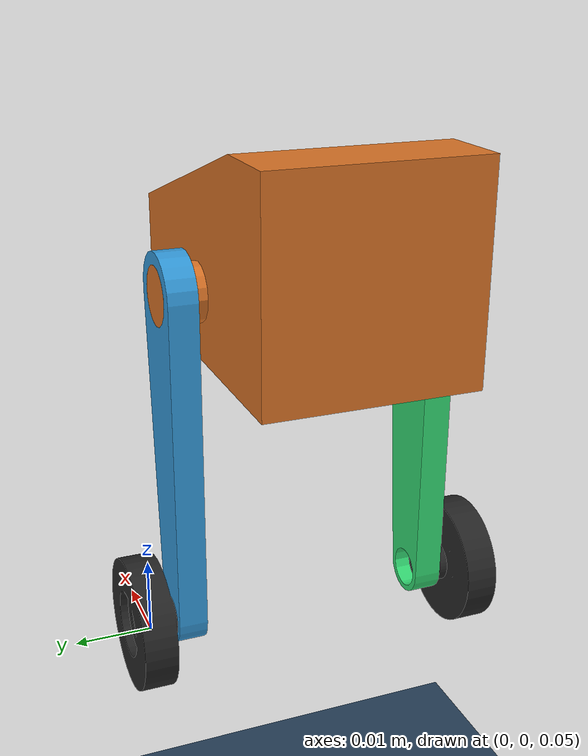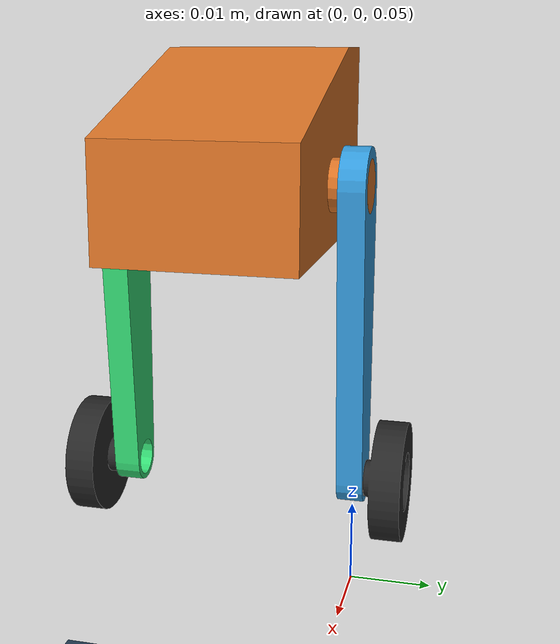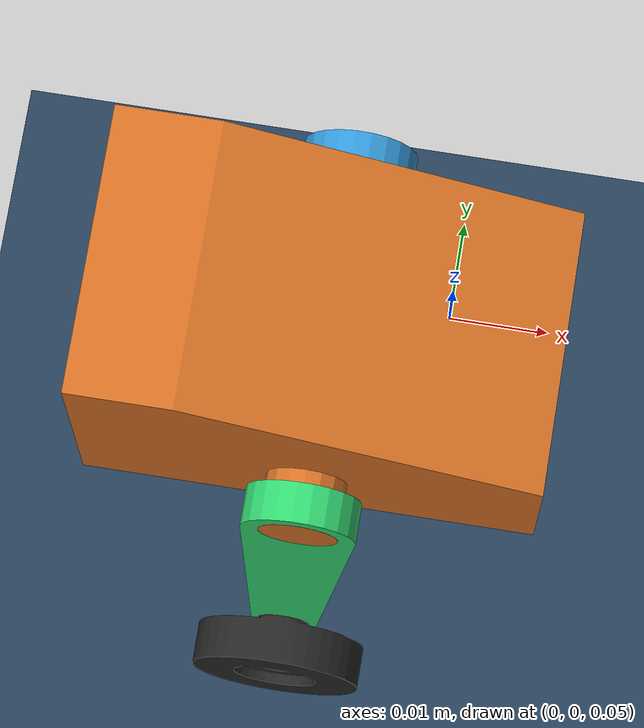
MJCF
<mujoco model="wheel_leg">
  <compiler angle="radian" meshdir="car_urdf/meshes" autolimits="true"/>
  <option gravity="0 0 -9.81" timestep="0.001" integrator="Euler"/>

  <visual>
    <headlight ambient="0.4 0.4 0.4" diffuse="0.8 0.8 0.8" specular="0.1 0.1 0.1"/>
  </visual>

  <default>
    <geom friction="1.2 0.005 0.0001" condim="3" solref="0.002 1" solimp="0.99 0.999 0.0001 0.5 2"/>
  </default>

  <asset>
    <mesh name="base_link" file="base_link.STL"/>
    <mesh name="left_leg" file="left_leg.STL"/>
    <mesh name="left_wheel" file="left_wheel.STL"/>
    <mesh name="right_leg" file="right_leg.STL"/>
    <mesh name="right_wheel" file="right_wheel.STL"/>
    <texture name="grid" type="2d" builtin="checker" width="512" height="512" rgb1=".1 .2 .3" rgb2=".2 .3 .4"/>
    <material name="grid" texture="grid" texrepeat="50 50" reflectance="0"/>
  </asset>

  <worldbody>
    <geom name="floor" type="plane" size="0 0 0.1" material="grid"/>

    <body name="base_link" pos="0 0 0.10">
      <freejoint name="root"/>
      <inertial pos="-0.011138 -0.0175 0.001698" mass="0.16794" diaginertia="1.6308e-05 2.8107e-05 3.0344e-05"/>
      <geom type="mesh" rgba="0.85 0.45 0.15 1" mesh="base_link"/>

      <!-- Left Leg (fully seated on left shaft, perfectly symmetric) -->
      <body name="left_leg" pos="-0.0093975 0.0000 -0.0010809" quat="0.0159413 0.706926 0.706928 0.0159413">
        <inertial pos="-0.00175 -0.00163 0.018" quat="0.998982 0.0451138 0 0" mass="0.0087651" diaginertia="1.2889e-06 1.24217e-06 6.45868e-08"/>
        <joint name="left_hip_joint" range="-3.14 3.14" actuatorfrcrange="-10 10" axis="1 0 0" damping="0.001"/>
        <geom type="mesh" rgba="0.2 0.6 0.85 1" mesh="left_leg" contype="0" conaffinity="0"/>

        <!-- Left Wheel: OUTSIDE the left leg -->
        <body name="left_wheel" pos="-0.0015 -0.0036054 0.039837" quat="0.498403 0.501591 -0.498403 -0.501594">
          <inertial pos="0 0 -0.004057" quat="0.5 0.5 -0.5 0.5" mass="0.0022065" diaginertia="4.03259e-08 2.24677e-08 2.24677e-08"/>
          <joint name="left_wheel_joint" axis="0 0 -1" actuatorfrcrange="-10 10" damping="0.0001"/>
          <geom type="mesh" rgba="0.15 0.15 0.15 1" mesh="left_wheel" contype="0" conaffinity="0"/>
          <geom type="sphere" size="0.008" friction="1.5 0.01 0.0001" rgba="0 0 0 0" group="3"/>
        </body>
      </body>

      <!-- Right Leg (fully seated on right shaft, perfectly symmetric) -->
      <body name="right_leg" pos="-0.0093975 -0.0315 -0.0010809" quat="0.0159413 0.706926 0.706928 0.0159413">
        <inertial pos="-0.00175 -0.00163 0.018" quat="0.998982 0.0451138 0 0" mass="0.0087651" diaginertia="1.2889e-06 1.24217e-06 6.45868e-08"/>
        <joint name="right_hip_joint" range="-3.14 3.14" actuatorfrcrange="-10 10" axis="1 0 0" damping="0.001"/>
        <geom type="mesh" rgba="0.2 0.85 0.45 1" mesh="right_leg" contype="0" conaffinity="0"/>

        <!-- Right Wheel: OUTSIDE the right leg -->
        <body name="right_wheel" pos="-0.002 -0.0036054 0.039837" quat="0.501591 -0.498403 0.501594 -0.498403">
          <inertial pos="0 0 -0.004057" quat="0.5 0.5 -0.5 0.5" mass="0.0022065" diaginertia="4.03259e-08 2.24677e-08 2.24677e-08"/>
          <joint name="right_wheel_joint" axis="0 0 1" actuatorfrcrange="-10 10" damping="0.0001"/>
          <geom type="mesh" rgba="0.15 0.15 0.15 1" mesh="right_wheel" contype="0" conaffinity="0"/>
          <geom type="sphere" size="0.008" friction="1.5 0.01 0.0001" rgba="0 0 0 0" group="3"/>
        </body>
      </body>
    </body>
  </worldbody>

  <actuator>
    <motor name="left_hip_motor" joint="left_hip_joint" ctrlrange="-10 10"/>
    <motor name="left_wheel_motor" joint="left_wheel_joint" ctrlrange="-10 10"/>
    <motor name="right_hip_motor" joint="right_hip_joint" ctrlrange="-10 10"/>
    <motor name="right_wheel_motor" joint="right_wheel_joint" ctrlrange="-10 10"/>
  </actuator>

  <sensor>
    <framepos name="body_pos" objtype="body" objname="base_link"/>
    <framequat name="body_quat" objtype="body" objname="base_link"/>
    <framelinvel name="body_linvel" objtype="body" objname="base_link"/>
    <frameangvel name="body_angvel" objtype="body" objname="base_link"/>
    <jointpos name="left_hip_pos" joint="left_hip_joint"/>
    <jointvel name="left_hip_vel" joint="left_hip_joint"/>
    <jointpos name="right_hip_pos" joint="right_hip_joint"/>
    <jointvel name="right_hip_vel" joint="right_hip_joint"/>
    <jointpos name="left_wheel_pos" joint="left_wheel_joint"/>
    <jointvel name="left_wheel_vel" joint="left_wheel_joint"/>
    <jointpos name="right_wheel_pos" joint="right_wheel_joint"/>
    <jointvel name="right_wheel_vel" joint="right_wheel_joint"/>
  </sensor>
</mujoco>
